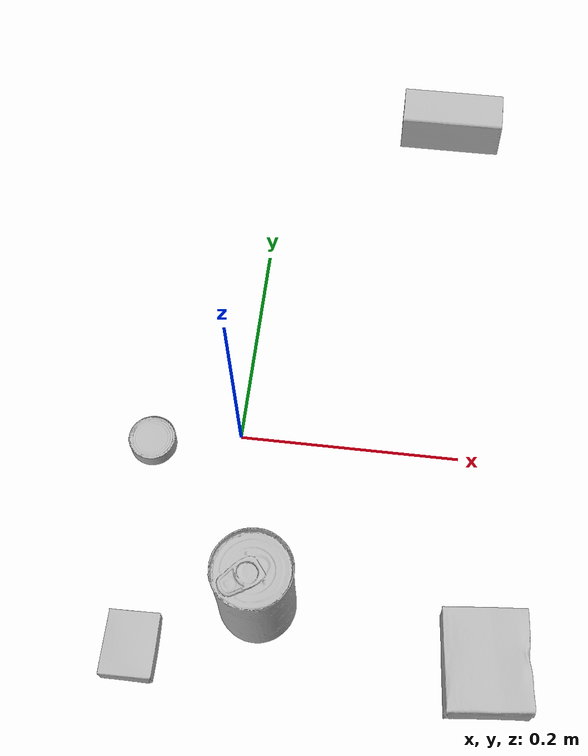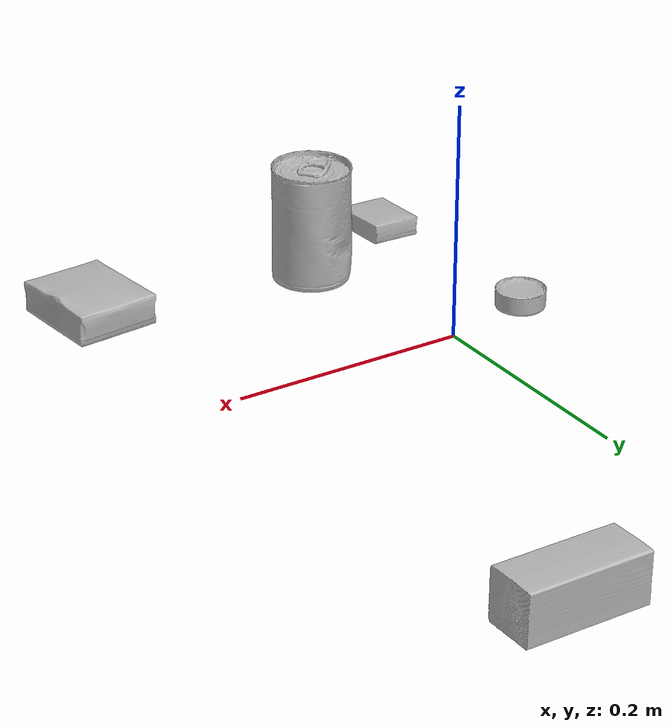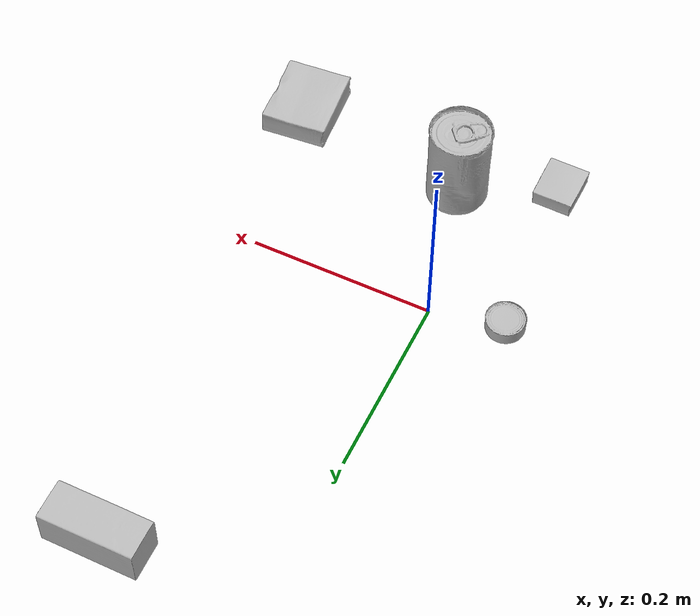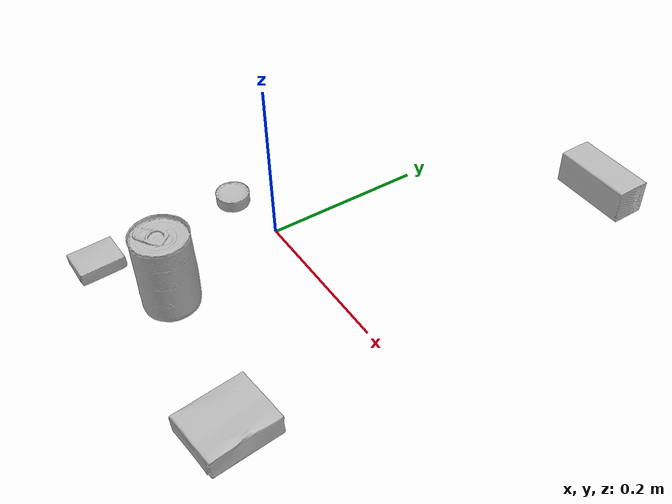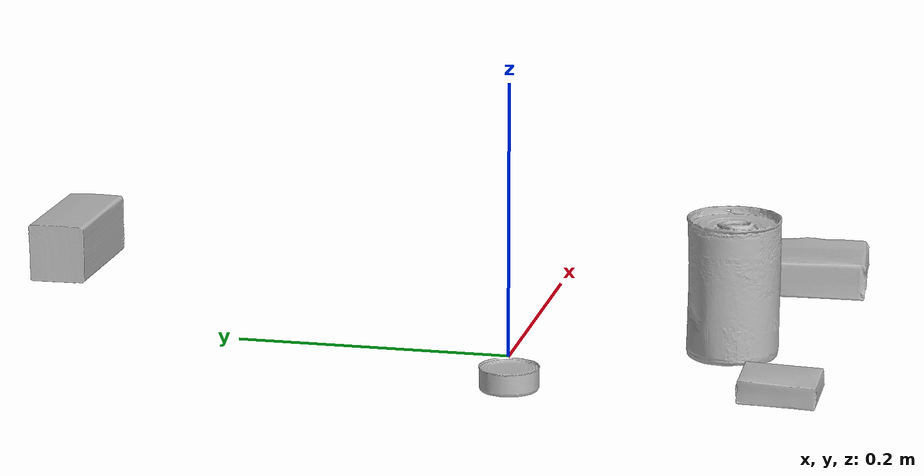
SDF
<sdf version="1.4">
  <world name="default">
    <light name="light1" type="point">
      <pose>0 0 1 0 0 0</pose>
      <diffuse>3 3 3 1</diffuse>
      <specular>3 3 3 1</specular>
    </light>
    <light name="light2" type="point">
      <pose>0 0.5 2 0 0 0</pose>
      <diffuse>1 1 1 1</diffuse>
      <specular>1 1 1 1</specular>
    </light>
    <light name="light3" type="point">
      <pose>0 0.5 2 0 0 0</pose>
      <diffuse>3 3 3 1</diffuse>
      <specular>3 3 3 1</specular>
    </light>
    <scene>
      <ambient>0.7 0.7 0.7</ambient>
    </scene>
    <model name="box1">
      <link name="link_box1">
        <collision name="default">
          <geometry>
            <mesh>
              <uri>model://pudding_box/collision_meshes/collision.obj</uri>
              <scale>0.5 0.5 0.5</scale>
            </mesh>
          </geometry>
          <surface>
            <friction>
              <ode>
                <mu>0.5</mu>
                <mu2>0.5</mu2>
              </ode>
            </friction>
          <contact>
        <ode>
            <max_vel>0</max_vel>
            <min_depth>0.0001</min_depth>
            <kp>1e8</kp>
        </ode>
    </contact></surface>
        </collision>
        <visual name="default">
          <geometry>
            <mesh>
              <uri>model://pudding_box/visual_meshes/visual.dae</uri>
              <scale>0.5 0.5 0.5</scale>
            </mesh>
          </geometry>
        </visual>
        <inertial>
          <mass>0.049221161752939224</mass>
          <pose>0.00024474109522998333 0.00040339428232982755 -0.0002594413817860186 0.005213101772454675 -0.006603800120423707 0.020079827019105066</pose>
          <inertia>
            <ixx>1.3910499e-05</ixx>
            <iyy>9.3590825e-06</iyy>
            <izz>2.0542482e-05</izz>
            <ixy>0</ixy>
            <ixz>0</ixz>
            <iyz>0</iyz>
          </inertia>
        </inertial>
      </link>
      <pose>-0.06226901710033417 -0.2036762237548828 0.009862900711596012 0.02234847623537595 -0.011391814460980693 0.003894305253832719</pose>
    </model>
    <model name="box2">
      <link name="link_box2">
        <collision name="default">
          <geometry>
            <mesh>
              <uri>model://gelatin_box/collision_meshes/collision.obj</uri>
              <scale>1.0 1.0 1.0</scale>
            </mesh>
          </geometry>
          <surface>
            <friction>
              <ode>
                <mu>0.5</mu>
                <mu2>0.5</mu2>
              </ode>
            </friction>
          <contact>
        <ode>
            <max_vel>0</max_vel>
            <min_depth>0.0001</min_depth>
            <kp>1e8</kp>
        </ode>
    </contact></surface>
        </collision>
        <visual name="default">
          <geometry>
            <mesh>
              <uri>model://gelatin_box/visual_meshes/visual.dae</uri>
              <scale>1.0 1.0 1.0</scale>
            </mesh>
          </geometry>
        </visual>
        <inertial>
          <mass>0.1975366622209549</mass>
          <pose>0.000431961816502735 0.00011156871187267825 -0.00036403207923285663 -0.0010503719683328595 -0.0047558182256164224 0.016440557608480007</pose>
          <inertia>
            <ixx>0.00013944478</ixx>
            <iyy>9.960467e-05</iyy>
            <izz>0.00021226601</izz>
            <ixy>0</ixy>
            <ixz>0</ixz>
            <iyz>0</iyz>
          </inertia>
        </inertial>
      </link>
      <pose>0.23201489448547363 -0.18633276224136353 0.015168318524956703 0.00559741058847465 -0.007304509173902698 0.08438948628817458</pose>
    </model>
    <model name="box3">
      <link name="link_box3">
        <collision name="default">
          <geometry>
            <mesh>
              <uri>model://wood_block/collision_meshes/collision.obj</uri>
              <scale>0.5 0.5 0.5</scale>
            </mesh>
          </geometry>
          <surface>
            <friction>
              <ode>
                <mu>0.5</mu>
                <mu2>0.5</mu2>
              </ode>
            </friction>
          <contact>
        <ode>
            <max_vel>0</max_vel>
            <min_depth>0.0001</min_depth>
            <kp>1e8</kp>
        </ode>
    </contact></surface>
        </collision>
        <visual name="default">
          <geometry>
            <mesh>
              <uri>model://wood_block/visual_meshes/visual.dae</uri>
              <scale>0.5 0.5 0.5</scale>
            </mesh>
          </geometry>
        </visual>
        <inertial>
          <mass>0.2799808979034424</mass>
          <pose>-2.9066577553749084e-06 -0.000285404734313488 0.00013204291462898254 -0.05220811074253327 -0.005192695744074178 -0.0068613776969266935</pose>
          <inertia>
            <ixx>9.3664195e-05</ixx>
            <iyy>0.0002958853</iyy>
            <izz>0.00029477844</izz>
            <ixy>0</ixy>
            <ixz>0</ixz>
            <iyz>0</iyz>
          </inertia>
        </inertial>
      </link>
      <pose>0.17029432952404022 0.3779563307762146 0.022629261016845703 -0.0052085451383083415 0.005718620031483181 0.005038914941952818</pose>
    </model>
    <model name="can1">
      <link name="link_can1">
        <collision name="default">
          <geometry>
            <mesh>
              <uri>model://tomato_soup_can/collision_meshes/collision.obj</uri>
              <scale>1.0 1.0 1.0</scale>
            </mesh>
          </geometry>
          <surface>
            <friction>
              <ode>
                <mu>0.5</mu>
                <mu2>0.5</mu2>
              </ode>
            </friction>
          <contact>
        <ode>
            <max_vel>0</max_vel>
            <min_depth>0.0001</min_depth>
            <kp>1e8</kp>
        </ode>
    </contact></surface>
        </collision>
        <visual name="default">
          <geometry>
            <mesh>
              <uri>model://tomato_soup_can/visual_meshes/visual.dae</uri>
              <scale>1.0 1.0 1.0</scale>
            </mesh>
          </geometry>
        </visual>
        <inertial>
          <mass>0.35683923959732056</mass>
          <pose>0.00012652271834667772 0.00010805513738887385 -0.0017973982030525804 0.007020067402313596 0.00042299257688944205 -0.009903281374499336</pose>
          <inertia>
            <ixx>0.0003912439</ixx>
            <iyy>0.00038898273</iyy>
            <izz>0.00020277809</izz>
            <ixy>0</ixy>
            <ixz>0</ixz>
            <iyz>0</iyz>
          </inertia>
        </inertial>
      </link>
      <pose>0.03749730810523033 -0.15569378435611725 0.05127401649951935 -4.0233732386201904e-07 -7.201209912749959e-07 -1.1787212513697691</pose>
    </model>
    <model name="can2">
      <link name="link_can2">
        <collision name="default">
          <geometry>
            <mesh>
              <uri>model://tuna_fish_can/collision_meshes/collision.obj</uri>
              <scale>0.5 0.5 0.5</scale>
            </mesh>
          </geometry>
          <surface>
            <friction>
              <ode>
                <mu>0.5</mu>
                <mu2>0.5</mu2>
              </ode>
            </friction>
          <contact>
        <ode>
            <max_vel>0</max_vel>
            <min_depth>0.0001</min_depth>
            <kp>1e8</kp>
        </ode>
    </contact></surface>
        </collision>
        <visual name="default">
          <geometry>
            <mesh>
              <uri>model://tuna_fish_can/visual_meshes/visual.dae</uri>
              <scale>0.5 0.5 0.5</scale>
            </mesh>
          </geometry>
        </visual>
        <inertial>
          <mass>0.011508840136229992</mass>
          <pose>-2.0362092982395552e-05 -7.256176559167216e-06 -0.0005269026150926948 -0.0017944756095399476 0.0001716207335623094 0.24053890436657652</pose>
          <inertia>
            <ixx>1.5560124e-06</ixx>
            <iyy>1.5495272e-06</iyy>
            <izz>2.662559e-06</izz>
            <ixy>0</ixy>
            <ixz>0</ixz>
            <iyz>0</iyz>
          </inertia>
        </inertial>
      </link>
      <pose>-0.07835755497217178 -0.016485612839460373 0.008519998751580715 2.982371020629484e-08 2.9081113000828336e-08 1.2590490690960956</pose>
    </model>
  <physics type="ode">
      <max_contacts>50</max_contacts>
      <ode>
        <solver>
          <type>quick</type>
          <iters>75</iters>
        </solver>
        <constraints>
          <contact_max_correcting_vel>0</contact_max_correcting_vel>
          <contact_surface_layer>0</contact_surface_layer>
        </constraints>
      </ode>
    </physics></world>
</sdf>
